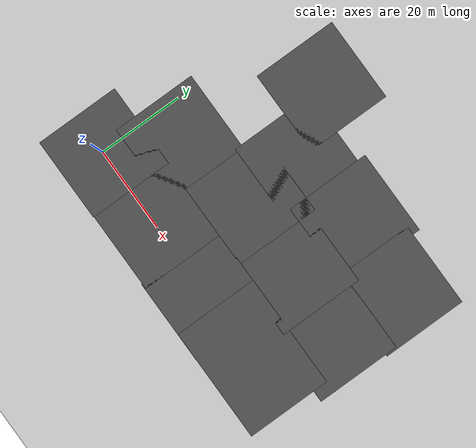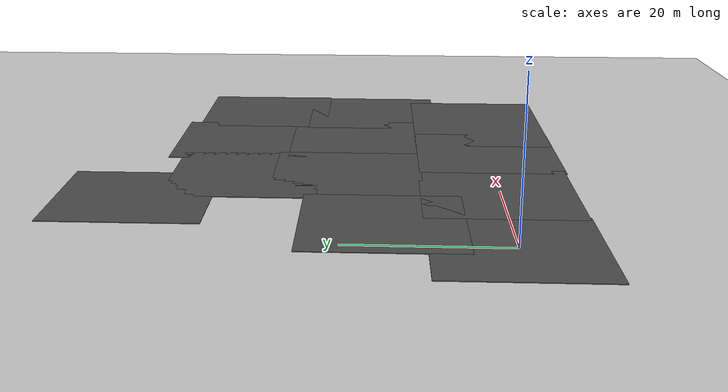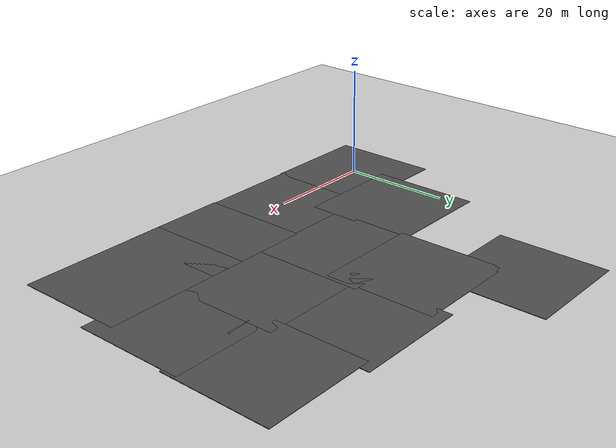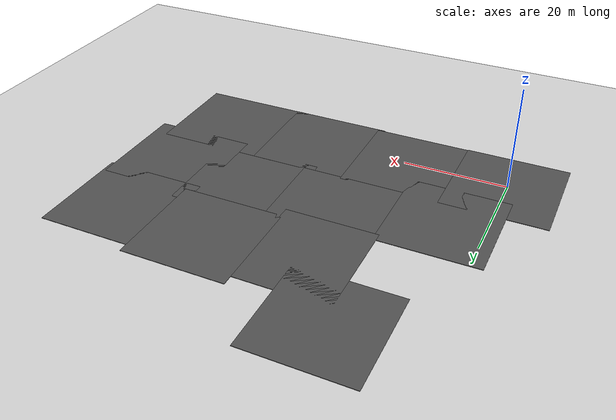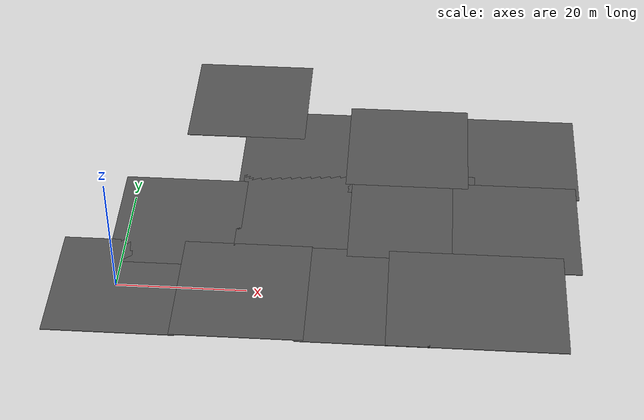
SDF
<sdf version="1.6">
 <world name="default">
  <light name="sun" type="directional">
   <pose>0 0 10 0 -0 0</pose>
   <diffuse>0.8 0.8 0.8 1</diffuse>
   <specular>0.1 0.1 0.1 1</specular>
   <attenuation>
    <range>1000</range>
    <constant>0.9</constant>
    <linear>0.01</linear>
    <quadratic>0.001</quadratic>
   </attenuation>
   <direction>-0.5 0.5 -1</direction>
  </light>
  <model name="ground_plane">
   <static>1</static>
   <link name="link">
    <collision name="collision">
     <geometry><plane><normal>0 0 1</normal><size>100 100</size></plane></geometry>
     <surface><friction><ode><mu>100</mu><mu2>50</mu2></ode></friction></surface>
    </collision>
    <visual name="visual">
     <cast_shadows>0</cast_shadows>
     <geometry><plane><normal>0 0 1</normal><size>100 100</size></plane></geometry>
     <material>
      <script><uri>file://media/materials/scripts/gazebo.material</uri><name>Gazebo/Grey</name></script>
     </material>
    </visual>
   </link>
  </model>
  <gravity>0 0 -9.8</gravity>
  <magnetic_field>6e-06 2.3e-05 -4.2e-05</magnetic_field>
  <atmosphere type="adiabatic"/>
  <physics name="default_physics" default="0" type="ode">
   <max_step_size>0.001</max_step_size>
   <real_time_factor>1</real_time_factor>
   <real_time_update_rate>1000</real_time_update_rate>
  </physics>
  <scene><ambient>0.4 0.4 0.4 1</ambient><background>0.7 0.7 0.7 1</background><shadows>1</shadows></scene>
  <spherical_coordinates>
   <surface_model>EARTH_WGS84</surface_model>
   <latitude_deg>0</latitude_deg>
   <longitude_deg>0</longitude_deg>
   <elevation>0</elevation>
   <heading_deg>0</heading_deg>
  </spherical_coordinates>
  <model name="asphalt_plane">
   <static>1</static>
   <link name="link">
    <collision name="collision"><geometry><box><size>20 20 0.1</size></box></geometry></collision>
    <visual name="visual">
     <cast_shadows>0</cast_shadows>
     <geometry><box><size>20 20 0.1</size></box></geometry>
     <material>
      <script>
       <uri>model://asphalt_plane/materials/scripts</uri>
       <uri>model://asphalt_plane/materials/textures</uri>
       <name>vrc/asphalt</name>
      </script>
     </material>
    </visual>
   </link>
   <pose>0.23704 0.122526 0 0 -0 0</pose>
  </model>
  <model name="asphalt_plane_0">
   <static>1</static>
   <link name="link">
    <collision name="collision"><geometry><box><size>20 20 0.1</size></box></geometry></collision>
    <visual name="visual">
     <cast_shadows>0</cast_shadows>
     <geometry><box><size>20 20 0.1</size></box></geometry>
     <material>
      <script>
       <uri>model://asphalt_plane/materials/scripts</uri>
       <uri>model://asphalt_plane/materials/textures</uri>
       <name>vrc/asphalt</name>
      </script>
     </material>
    </visual>
   </link>
   <pose>19.2959 0.285979 0 0 -0 0</pose>
  </model>
  <model name="asphalt_plane_1">
   <static>1</static>
   <link name="link">
    <collision name="collision"><geometry><box><size>20 20 0.1</size></box></geometry></collision>
    <visual name="visual">
     <cast_shadows>0</cast_shadows>
     <geometry><box><size>20 20 0.1</size></box></geometry>
     <material>
      <script>
       <uri>model://asphalt_plane/materials/scripts</uri>
       <uri>model://asphalt_plane/materials/textures</uri>
       <name>vrc/asphalt</name>
      </script>
     </material>
    </visual>
   </link>
   <pose>37.9331 0.055096 0 0 -0 0</pose>
  </model>
  <model name="asphalt_plane_2">
   <static>1</static>
   <link name="link">
    <collision name="collision"><geometry><box><size>20 20 0.1</size></box></geometry></collision>
    <visual name="visual">
     <cast_shadows>0</cast_shadows>
     <geometry><box><size>20 20 0.1</size></box></geometry>
     <material>
      <script>
       <uri>model://asphalt_plane/materials/scripts</uri>
       <uri>model://asphalt_plane/materials/textures</uri>
       <name>vrc/asphalt</name>
      </script>
     </material>
    </visual>
   </link>
   <pose>26.9694 19.7931 0 0 -0 0</pose>
  </model>
  <model name="asphalt_plane_3">
   <static>1</static>
   <link name="link">
    <collision name="collision"><geometry><box><size>20 20 0.1</size></box></geometry></collision>
    <visual name="visual">
     <cast_shadows>0</cast_shadows>
     <geometry><box><size>20 20 0.1</size></box></geometry>
     <material>
      <script>
       <uri>model://asphalt_plane/materials/scripts</uri>
       <uri>model://asphalt_plane/materials/textures</uri>
       <name>vrc/asphalt</name>
      </script>
     </material>
    </visual>
   </link>
   <pose>44.7808 18.5202 0 0 -0 0</pose>
  </model>
  <model name="asphalt_plane_4">
   <static>1</static>
   <link name="link">
    <collision name="collision"><geometry><box><size>27.0576 20 0.1</size></box></geometry></collision>
    <visual name="visual">
     <cast_shadows>0</cast_shadows>
     <geometry><box><size>27.0576 20 0.1</size></box></geometry>
     <material>
      <script>
       <uri>model://asphalt_plane/materials/scripts</uri>
       <uri>model://asphalt_plane/materials/textures</uri>
       <name>vrc/asphalt</name>
      </script>
     </material>
    </visual>
   </link>
   <pose>54.8845 0.085433 0 0 -0 0</pose>
  </model>
  <model name="asphalt_plane_6">
   <static>1</static>
   <link name="link">
    <collision name="collision"><geometry><box><size>20 20 0.1</size></box></geometry></collision>
    <visual name="visual">
     <cast_shadows>0</cast_shadows>
     <geometry><box><size>20 20 0.1</size></box></geometry>
     <material>
      <script>
       <uri>model://asphalt_plane/materials/scripts</uri>
       <uri>model://asphalt_plane/materials/textures</uri>
       <name>vrc/asphalt</name>
      </script>
     </material>
    </visual>
   </link>
   <pose>61.1587 16.6043 0 0 -0 0</pose>
  </model>
  <model name="asphalt_plane_7">
   <static>1</static>
   <link name="link">
    <collision name="collision"><geometry><box><size>20 20 0.1</size></box></geometry></collision>
    <visual name="visual">
     <cast_shadows>0</cast_shadows>
     <geometry><box><size>20 20 0.1</size></box></geometry>
     <material>
      <script>
       <uri>model://asphalt_plane/materials/scripts</uri>
       <uri>model://asphalt_plane/materials/textures</uri>
       <name>vrc/asphalt</name>
      </script>
     </material>
    </visual>
   </link>
   <pose>61.631 33.8132 0 0 -0 0</pose>
  </model>
  <model name="asphalt_plane_8">
   <static>1</static>
   <link name="link">
    <collision name="collision"><geometry><box><size>20 20 0.1</size></box></geometry></collision>
    <visual name="visual">
     <cast_shadows>0</cast_shadows>
     <geometry><box><size>20 20 0.1</size></box></geometry>
     <material>
      <script>
       <uri>model://asphalt_plane/materials/scripts</uri>
       <uri>model://asphalt_plane/materials/textures</uri>
       <name>vrc/asphalt</name>
      </script>
     </material>
    </visual>
   </link>
   <pose>43.6992 35.5306 0 0 -0 0</pose>
  </model>
  <model name="asphalt_plane_9">
   <static>1</static>
   <link name="link">
    <collision name="collision"><geometry><box><size>20 20 0.1</size></box></geometry></collision>
    <visual name="visual">
     <cast_shadows>0</cast_shadows>
     <geometry><box><size>20 20 0.1</size></box></geometry>
     <material>
      <script>
       <uri>model://asphalt_plane/materials/scripts</uri>
       <uri>model://asphalt_plane/materials/textures</uri>
       <name>vrc/asphalt</name>
      </script>
     </material>
    </visual>
   </link>
   <pose>26.2276 33.5231 0 0 -0 0</pose>
  </model>
  <model name="asphalt_plane_10">
   <static>1</static>
   <link name="link">
    <collision name="collision"><geometry><box><size>20 20 0.1</size></box></geometry></collision>
    <visual name="visual">
     <cast_shadows>0</cast_shadows>
     <geometry><box><size>20 20 0.1</size></box></geometry>
     <material>
      <script>
       <uri>model://asphalt_plane/materials/scripts</uri>
       <uri>model://asphalt_plane/materials/textures</uri>
       <name>vrc/asphalt</name>
      </script>
     </material>
    </visual>
   </link>
   <pose>16.1522 46.6555 0 0 -0 0</pose>
  </model>
  <model name="asphalt_plane_11">
   <static>1</static>
   <link name="link">
    <collision name="collision"><geometry><box><size>20 20 0.1</size></box></geometry></collision>
    <visual name="visual">
     <cast_shadows>0</cast_shadows>
     <geometry><box><size>20 20 0.1</size></box></geometry>
     <material>
      <script>
       <uri>model://asphalt_plane/materials/scripts</uri>
       <uri>model://asphalt_plane/materials/textures</uri>
       <name>vrc/asphalt</name>
      </script>
     </material>
    </visual>
   </link>
   <pose>7.73977 15.1426 0 0 -0 0</pose>
  </model>
  <model name="stone_10_2_5_1cm">
   <link name="link">
    <pose>0 0 0.005 0 -0 0</pose>
    <inertial>
     <mass>0.0628</mass>
     <inertia>
      <ixx>3.79417e-06</ixx>
      <ixy>0</ixy>
      <ixz>0</ixz>
      <iyy>5.28567e-05</iyy>
      <iyz>0</iyz>
      <izz>5.56042e-05</izz>
     </inertia>
    </inertial>
    <collision name="collision">
     <geometry><box><size>0.1 0.025 0.01</size></box></geometry>
     <surface>
      <contact>
       <poissons_ratio>0.15</poissons_ratio>
       <elastic_modulus>8e+10</elastic_modulus>
       <ode><kp>100000</kp><kd>100</kd><max_vel>100</max_vel><min_depth>0.001</min_depth></ode>
      </contact>
      <friction>
       <torsional>
        <coefficient>1</coefficient>
        <use_patch_radius>0</use_patch_radius>
        <surface_radius>0.01</surface_radius>
       </torsional>
      </friction>
     </surface>
    </collision>
    <visual name="visual">
     <geometry><box><size>0.1 0.025 0.01</size></box></geometry>
     <material>
      <script><uri>file://media/materials/scripts/gazebo.material</uri><name>Gazebo/Grey</name></script>
     </material>
    </visual>
   </link>
   <pose>0.000514 -4.9e-05 -0.029968 0.378648 3.5e-05 -0.038018</pose>
  </model>
 </world>
</sdf>
